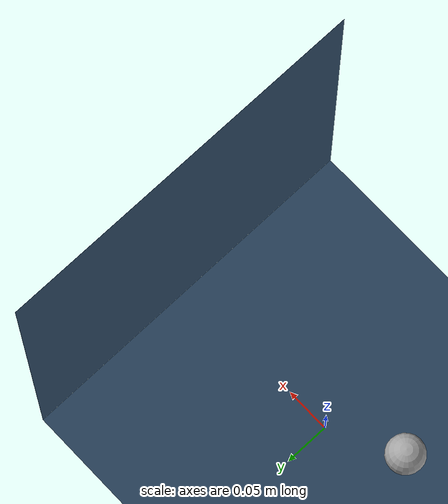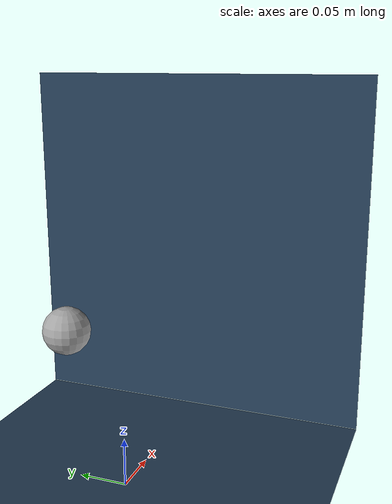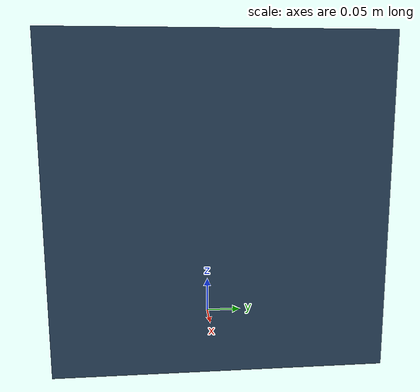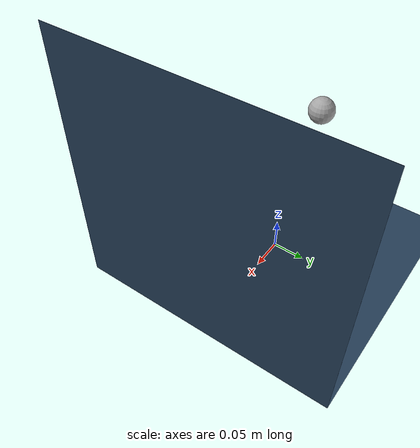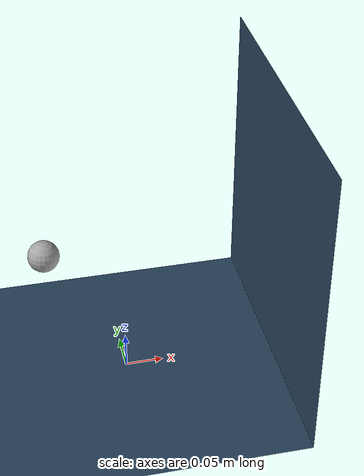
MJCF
<mujoco>
  <!-- 旋转反冲测试模型 -->
  <!-- 用于测试球体旋转时的反冲效应 -->

  <!-- 仿真选项 -->
  <option cone="elliptic" timestep="1e-4" integrator="implicitfast"/>
  <!-- cone="elliptic": 使用椭圆锥接触模型 -->
  <!-- timestep="1e-4": 时间步长0.1毫秒，高精度仿真 -->
  <!-- integrator="implicitfast": 使用快速隐式积分器 -->

  <!-- 可视化设置 -->
  <visual>
    <global elevation="0"/>
    <!-- elevation="0": 全局仰角设置为0度，水平视角 -->
  </visual>

  <!-- 资源定义 -->
  <asset>
    <!-- 地面网格纹理 -->
    <texture name="grid" type="2d" builtin="checker" rgb1=".1 .2 .3" rgb2=".2 .3 .4" width="300" height="300"/>
    <!-- name="grid": 网格纹理名称 -->
    <!-- type="2d": 2D纹理类型 -->
    <!-- builtin="checker": 内置棋盘格纹理 -->
    <!-- rgb1/rgb2: 棋盘格两种颜色，蓝灰色系 -->
    <!-- width/height: 纹理尺寸，300x300像素 -->

    <material name="grid" texture="grid" texrepeat="8 8" reflectance=".2"/>
    <!-- name="grid": 网格材料名称 -->
    <!-- texture="grid": 使用网格纹理 -->
    <!-- texrepeat="8 8": 纹理重复次数，8x8 -->
    <!-- reflectance=".2": 反射率20% -->

    <!-- 球体纹理 -->
    <texture name="ball" type="cube" builtin="checker" rgb1=".3 .3 .3" rgb2="1 1 1" width="30" height="30"/>
    <!-- name="ball": 球体纹理名称 -->
    <!-- type="cube": 立方体贴图纹理 -->
    <!-- builtin="checker": 内置棋盘格纹理 -->
    <!-- rgb1/rgb2: 棋盘格两种颜色，灰色和白色 -->
    <!-- width/height: 纹理尺寸，300x300像素 -->

    <material name="ball" texture="ball" texrepeat="8 8"/>
    <!-- name="ball": 球体材料名称 -->
    <!-- texture="ball": 使用球体纹理 -->
    <!-- texrepeat="8 8": 纹理重复次数，8x8 -->
  </asset>

  <!-- 世界体 - 主仿真环境 -->
  <worldbody>
    <!-- 地面平面 -->
    <geom name="floor" size=".2 .2 .01" type="plane" material="grid"/>
    <!-- name="floor": 地面几何体名称 -->
    <!-- size=".2 .2 .01": 平面尺寸，0.4x0.4米，厚度0.02米 -->
    <!-- type="plane": 平面几何体类型 -->
    <!-- material="grid": 使用网格材料 -->

    <!-- 垂直墙壁 -->
    <geom name="wall" size=".2 .2 .01" type="plane" material="grid" pos=".2 0 .2" zaxis="-1 0 0"/>
    <!-- name="wall": 墙壁几何体名称 -->
    <!-- size=".2 .2 .01": 平面尺寸，0.4x0.4米，厚度0.02米 -->
    <!-- type="plane": 平面几何体类型 -->
    <!-- material="grid": 使用网格材料 -->
    <!-- pos=".2 0 .2": 位置，x轴0.2米，z轴0.2米 -->
    <!-- zaxis="-1 0 0": z轴方向，指向-x方向，形成垂直墙 -->

    <!-- 光照设置 -->
    <light pos="0 0 .6"/>
    <!-- 主光源，位置在z轴上方0.6米 -->
    <light pos="-.6 0 .6" dir="1 0 -1"/>
    <!-- 辅助光源，位置在x轴-0.6米，z轴0.6米 -->
    <!-- dir="1 0 -1": 光照方向，指向x轴正方向，z轴负方向 -->

    <!-- 主球体 -->
    <body name="ball" pos="-.1 0 .2">
      <!-- name="ball": 主球体名称 -->
      <!-- pos="-.1 0 .2": 初始位置，x轴-0.1米，z轴0.2米 -->

      <freejoint/>
      <!-- 自由关节，允许6自由度运动 -->

      <geom name="ball" type="sphere" size=".02" material="ball" mass=".001"/>
      <!-- name="ball": 球体几何体名称 -->
      <!-- type="sphere": 球体几何体类型 -->
      <!-- size=".02": 球体半径，2厘米 -->
      <!-- material="ball": 使用球体材料 -->
      <!-- mass=".001": 质量，1克 -->

      <!-- 配重球体 -->
      <body name="ballast">
        <!-- name="ballast": 配重球体名称 -->

        <joint type="ball" stiffness="0.1" damping=".0001"/>
        <!-- type="ball": 球关节类型，允许3轴旋转 -->
        <!-- stiffness="0.1": 刚度，0.1 N⋅m/rad -->
        <!-- damping=".0001": 阻尼，0.0001 N⋅m⋅s/rad -->

        <geom name="ballast" type="sphere" size=".02" contype="0" conaffinity="0" mass=".01" group="3"/>
        <!-- name="ballast": 配重几何体名称 -->
        <!-- type="sphere": 球体几何体类型 -->
        <!-- size=".02": 球体半径，2厘米 -->
        <!-- contype="0": 接触类型0，不与地面接触 -->
        <!-- conaffinity="0": 接触亲和性0，不与墙壁接触 -->
        <!-- mass=".01": 质量，10克 -->
        <!-- group="3": 几何体组3，用于可视化分组 -->
      </body>
    </body>
  </worldbody>

  <!-- 默认接触设置 -->
  <default>
    <pair solref="-100000 0" solreffriction="0 -10000"/>
    <!-- solref="-100000 0": 求解器参考参数，高刚度接触 -->
    <!-- solreffriction="0 -10000": 摩擦求解器参数，高摩擦刚度 -->
  </default>

  <!-- 接触对定义 -->
  <contact>
    <pair geom1="floor" geom2="ball"/>
    <!-- 地面与主球体的接触 -->
    <pair geom1="wall" geom2="ball"/>
    <!-- 墙壁与主球体的接触 -->
  </contact>

  <!-- 关键帧定义 -->
  <keyframe>
    <key name="throw" qvel="1.3 0 0 0 0 0 0 0 0"/>
    <!-- name="throw": 投掷关键帧名称 -->
    <!-- qvel="1.3 0 0 0 0 0 0 0 0": 初始速度，x轴1.3 m/s -->
    <!-- 格式：[x_vel, y_vel, z_vel, x_ang_vel, y_ang_vel, z_ang_vel, ...] -->
  </keyframe>
</mujoco>
